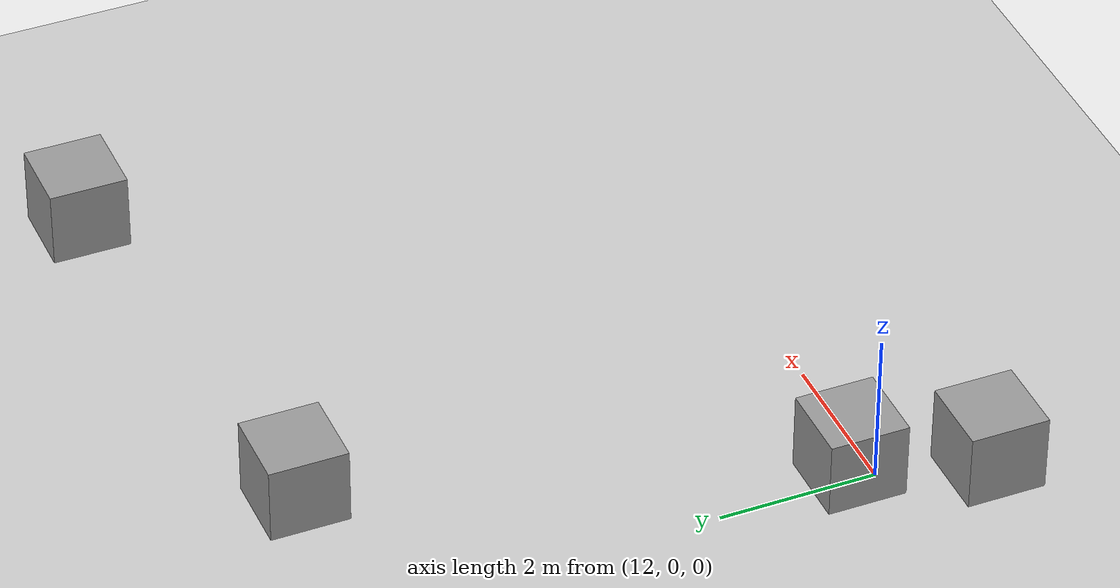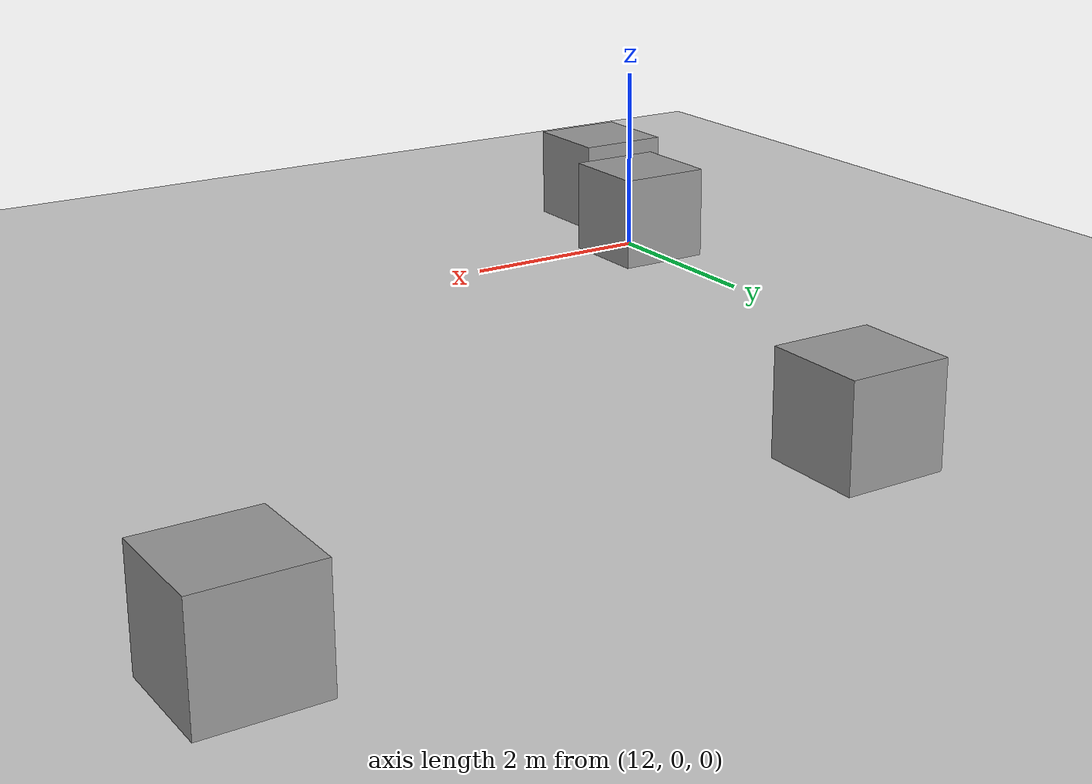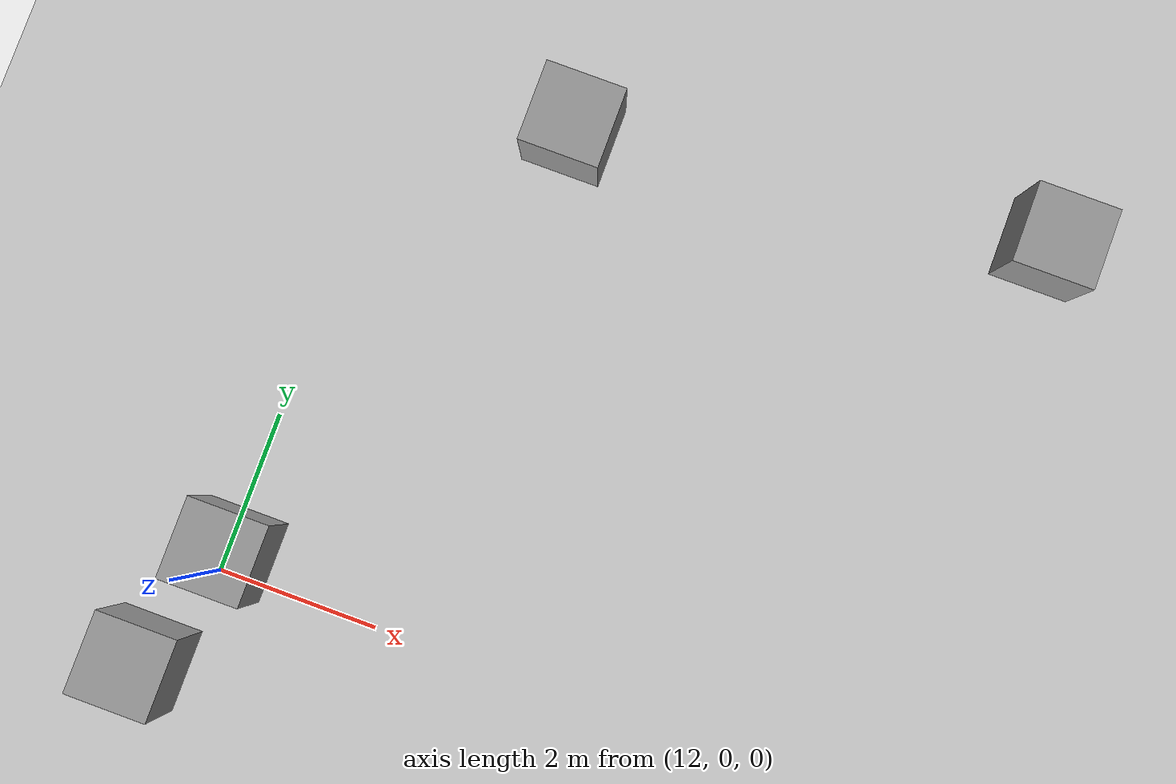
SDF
<sdf version="1.6">
 <world name="default">
  <model name="ground_plane">
   <static>1</static>
   <link name="link">
    <collision name="collision">
     <geometry><plane><normal>0 0 1</normal><size>100 100</size></plane></geometry>
     <surface>
      <contact><collide_bitmask>65535</collide_bitmask></contact>
      <friction><ode><mu>100</mu><mu2>50</mu2></ode></friction>
     </surface>
    </collision>
    <visual name="visual">
     <cast_shadows>0</cast_shadows>
     <geometry><plane><normal>0 0 1</normal><size>100 100</size></plane></geometry>
     <material>
      <script><uri>file://media/materials/scripts/gazebo.material</uri><name>Gazebo/Grey</name></script>
     </material>
    </visual>
   </link>
  </model>
  <model name="unit_box">
   <pose>14.1575 6.46999 0.499995 0 1e-05 0</pose>
   <link name="link">
    <inertial>
     <mass>1</mass>
     <inertia>
      <ixx>0.166667</ixx>
      <ixy>0</ixy>
      <ixz>0</ixz>
      <iyy>0.166667</iyy>
      <iyz>0</iyz>
      <izz>0.166667</izz>
     </inertia>
    </inertial>
    <collision name="collision"><geometry><box><size>1 1 1</size></box></geometry></collision>
    <visual name="visual">
     <geometry><box><size>1 1 1</size></box></geometry>
     <material>
      <script><name>Gazebo/Grey</name><uri>file://media/materials/scripts/gazebo.material</uri></script>
     </material>
    </visual>
   </link>
  </model>
  <model name="unit_box_0">
   <pose>20.0263 7.10302 0.499995 -1e-05 -0 -0</pose>
   <link name="link">
    <inertial>
     <mass>1</mass>
     <inertia>
      <ixx>0.166667</ixx>
      <ixy>0</ixy>
      <ixz>0</ixz>
      <iyy>0.166667</iyy>
      <iyz>0</iyz>
      <izz>0.166667</izz>
     </inertia>
    </inertial>
    <collision name="collision"><geometry><box><size>1 1 1</size></box></geometry></collision>
    <visual name="visual">
     <geometry><box><size>1 1 1</size></box></geometry>
     <material>
      <script><name>Gazebo/Grey</name><uri>file://media/materials/scripts/gazebo.material</uri></script>
     </material>
    </visual>
   </link>
  </model>
  <model name="unit_box_5">
   <pose>12.0703 0.301774 0.499995 0 1e-05 0</pose>
   <link name="link">
    <inertial>
     <mass>1</mass>
     <inertia>
      <ixx>0.166667</ixx>
      <ixy>0</ixy>
      <ixz>0</ixz>
      <iyy>0.166667</iyy>
      <iyz>0</iyz>
      <izz>0.166667</izz>
     </inertia>
    </inertial>
    <collision name="collision"><geometry><box><size>1 1 1</size></box></geometry></collision>
    <visual name="visual">
     <geometry><box><size>1 1 1</size></box></geometry>
     <material>
      <script><name>Gazebo/Grey</name><uri>file://media/materials/scripts/gazebo.material</uri></script>
     </material>
    </visual>
   </link>
  </model>
  <model name="unit_box_4">
   <pose>11.5612 -1.25821 0.5 0 -0 0</pose>
   <link name="link">
    <inertial>
     <mass>1</mass>
     <inertia>
      <ixx>0.166667</ixx>
      <ixy>0</ixy>
      <ixz>0</ixz>
      <iyy>0.166667</iyy>
      <iyz>0</iyz>
      <izz>0.166667</izz>
     </inertia>
    </inertial>
    <collision name="collision"><geometry><box><size>1 1 1</size></box></geometry></collision>
    <visual name="visual">
     <geometry><box><size>1 1 1</size></box></geometry>
     <material>
      <script><name>Gazebo/Grey</name><uri>file://media/materials/scripts/gazebo.material</uri></script>
     </material>
    </visual>
   </link>
  </model>
 </world>
</sdf>
